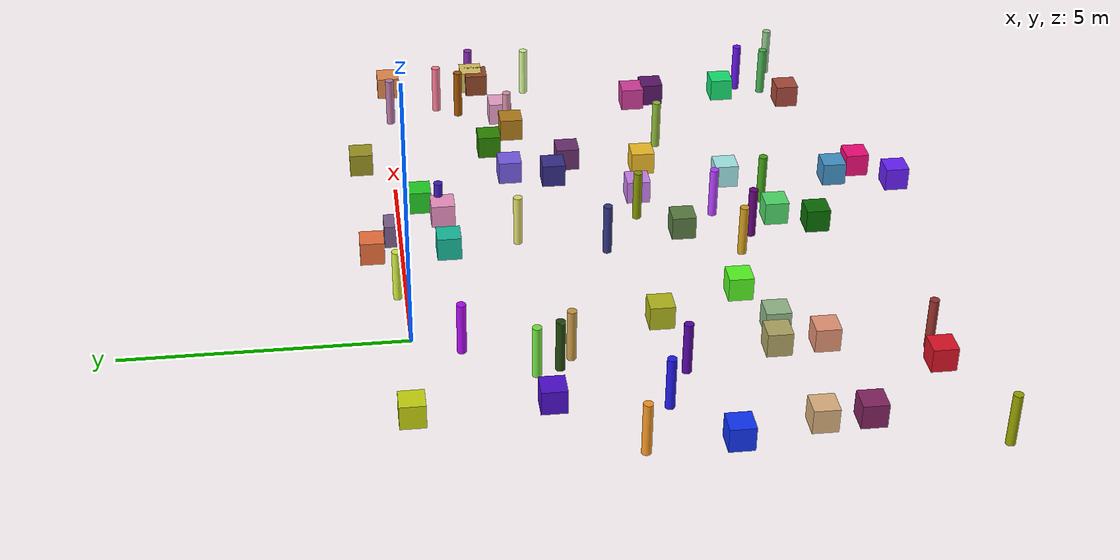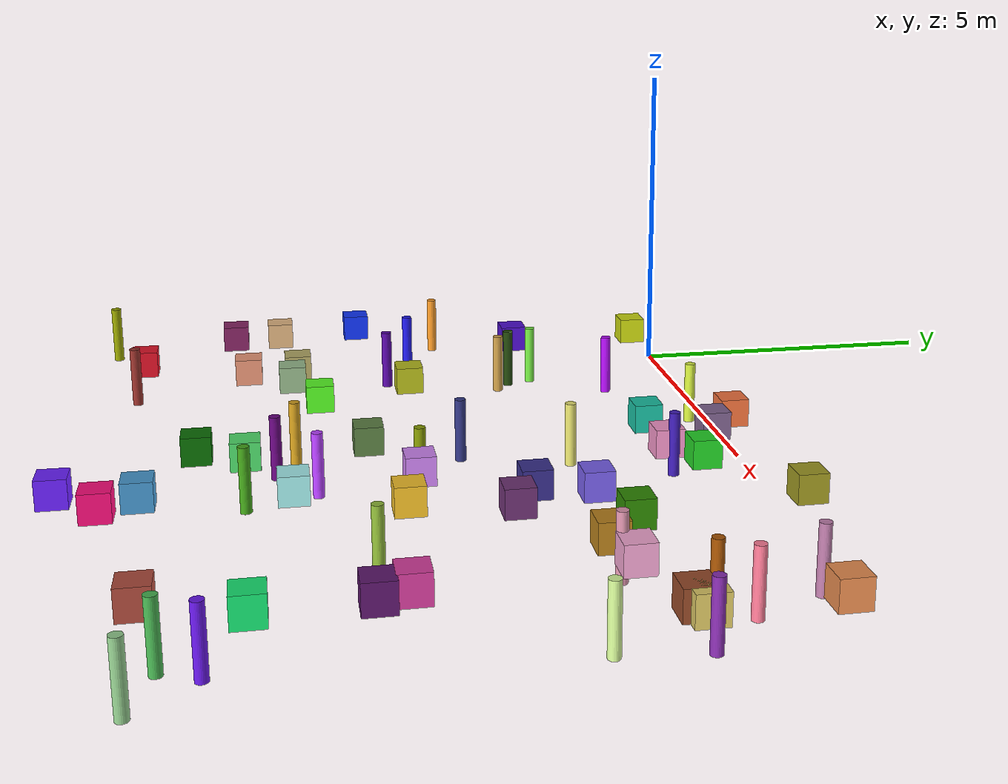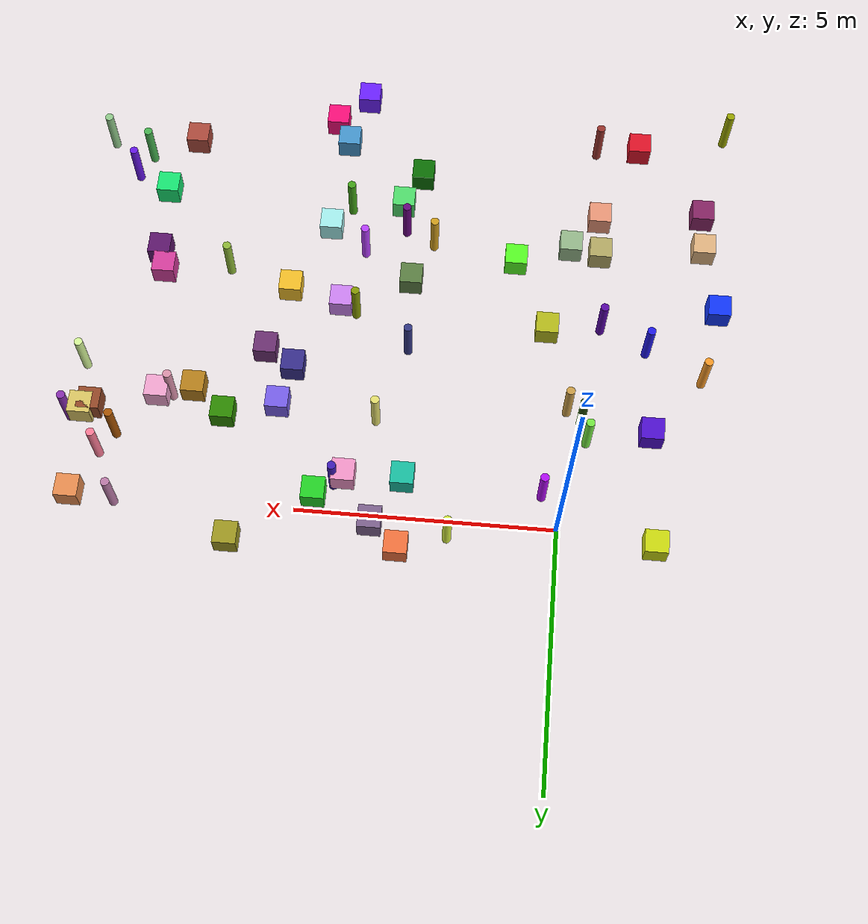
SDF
<sdf version="1.7">
 <world name="warehouse">
  <model name="ground_plane">
   <static>true</static>
   <link name="link">
    <collision name="collision">
     <geometry><plane><normal>0.0 0.0 1</normal><size>1 1</size></plane></geometry>
    </collision>
   </link>
  </model>
  <model name="unit_box_0">
   <static>true</static>
   <pose>3.54 0.08 0 0 0 0</pose>
   <link name="link">
    <collision name="collision">
     <geometry><box><size>0.450000 0.450000 0.450000</size></box></geometry>
    </collision>
    <visual name="visual">
     <geometry><box><size>0.450000 0.450000 0.450000</size></box></geometry>
     <material>
      <ambient>0.49221642949295763 0.3819438212654387 0.5555495247401226 1</ambient>
      <diffuse>0.49221642949295763 0.3819438212654387 0.5555495247401226 1</diffuse>
      <script><uri>file://media/materials/scripts/gazebo.material</uri><name>Gazebo/RandomColor0</name></script>
     </material>
    </visual>
   </link>
  </model>
  <model name="unit_cylinder_1">
   <static>true</static>
   <pose>3.65 -2.23 0 0 0 0</pose>
   <link name="link">
    <collision name="collision">
     <geometry><cylinder><radius>0.085000</radius><length>1.000000</length></cylinder></geometry>
    </collision>
    <visual name="visual">
     <geometry><cylinder><radius>0.085000</radius><length>1.000000</length></cylinder></geometry>
     <material>
      <ambient>0.8941086389998453 0.8734883737843444 0.4283232279845307 1</ambient>
      <diffuse>0.8941086389998453 0.8734883737843444 0.4283232279845307 1</diffuse>
      <script><uri>file://media/materials/scripts/gazebo.material</uri><name>Gazebo/RandomColor1</name></script>
     </material>
    </visual>
   </link>
  </model>
  <model name="unit_box_2">
   <static>true</static>
   <pose>4.67 -0.42 0 0 0 0</pose>
   <link name="link">
    <collision name="collision">
     <geometry><box><size>0.450000 0.450000 0.450000</size></box></geometry>
    </collision>
    <visual name="visual">
     <geometry><box><size>0.450000 0.450000 0.450000</size></box></geometry>
     <material>
      <ambient>0.14121589085153485 0.8244892088663838 0.14899712349563088 1</ambient>
      <diffuse>0.14121589085153485 0.8244892088663838 0.14899712349563088 1</diffuse>
      <script><uri>file://media/materials/scripts/gazebo.material</uri><name>Gazebo/RandomColor2</name></script>
     </material>
    </visual>
   </link>
  </model>
  <model name="unit_cylinder_3">
   <static>true</static>
   <pose>-0.12 -2.75 0 0 0 0</pose>
   <link name="link">
    <collision name="collision">
     <geometry><cylinder><radius>0.085000</radius><length>1.000000</length></cylinder></geometry>
    </collision>
    <visual name="visual">
     <geometry><cylinder><radius>0.085000</radius><length>1.000000</length></cylinder></geometry>
     <material>
      <ambient>0.7898262252167743 0.6124958252999348 0.2808378183170157 1</ambient>
      <diffuse>0.7898262252167743 0.6124958252999348 0.2808378183170157 1</diffuse>
      <script><uri>file://media/materials/scripts/gazebo.material</uri><name>Gazebo/RandomColor3</name></script>
     </material>
    </visual>
   </link>
  </model>
  <model name="unit_box_4">
   <static>true</static>
   <pose>-2.74 -6.52 0 0 0 0</pose>
   <link name="link">
    <collision name="collision">
     <geometry><box><size>0.450000 0.450000 0.450000</size></box></geometry>
    </collision>
    <visual name="visual">
     <geometry><box><size>0.450000 0.450000 0.450000</size></box></geometry>
     <material>
      <ambient>0.8758270074759532 0.7026170182139044 0.4998424159085938 1</ambient>
      <diffuse>0.8758270074759532 0.7026170182139044 0.4998424159085938 1</diffuse>
      <script><uri>file://media/materials/scripts/gazebo.material</uri><name>Gazebo/RandomColor4</name></script>
     </material>
    </visual>
   </link>
  </model>
  <model name="unit_cylinder_5">
   <static>true</static>
   <pose>0.29 -0.88 0 0 0 0</pose>
   <link name="link">
    <collision name="collision">
     <geometry><cylinder><radius>0.085000</radius><length>1.000000</length></cylinder></geometry>
    </collision>
    <visual name="visual">
     <geometry><cylinder><radius>0.085000</radius><length>1.000000</length></cylinder></geometry>
     <material>
      <ambient>0.6969958411022015 0.046907660404184814 0.953249913119854 1</ambient>
      <diffuse>0.6969958411022015 0.046907660404184814 0.953249913119854 1</diffuse>
      <script><uri>file://media/materials/scripts/gazebo.material</uri><name>Gazebo/RandomColor5</name></script>
     </material>
    </visual>
   </link>
  </model>
  <model name="unit_cylinder_7">
   <static>true</static>
   <pose>2.06 0.14 0 0 0 0</pose>
   <link name="link">
    <collision name="collision">
     <geometry><cylinder><radius>0.085000</radius><length>1.000000</length></cylinder></geometry>
    </collision>
    <visual name="visual">
     <geometry><cylinder><radius>0.085000</radius><length>1.000000</length></cylinder></geometry>
     <material>
      <ambient>0.83487229274006 0.9308624301170804 0.2489823457315793 1</ambient>
      <diffuse>0.83487229274006 0.9308624301170804 0.2489823457315793 1</diffuse>
      <script><uri>file://media/materials/scripts/gazebo.material</uri><name>Gazebo/RandomColor7</name></script>
     </material>
    </visual>
   </link>
  </model>
  <model name="unit_box_10">
   <static>true</static>
   <pose>-1.76 -2.22 0 0 0 0</pose>
   <link name="link">
    <collision name="collision">
     <geometry><box><size>0.450000 0.450000 0.450000</size></box></geometry>
    </collision>
    <visual name="visual">
     <geometry><box><size>0.450000 0.450000 0.450000</size></box></geometry>
     <material>
      <ambient>0.30819914242388124 0.05641024999295219 0.8069949057750591 1</ambient>
      <diffuse>0.30819914242388124 0.05641024999295219 0.8069949057750591 1</diffuse>
      <script><uri>file://media/materials/scripts/gazebo.material</uri><name>Gazebo/RandomColor10</name></script>
     </material>
    </visual>
   </link>
  </model>
  <model name="unit_cylinder_13">
   <static>true</static>
   <pose>-3.23 -9.56 0 0 0 0</pose>
   <link name="link">
    <collision name="collision">
     <geometry><cylinder><radius>0.085000</radius><length>1.000000</length></cylinder></geometry>
    </collision>
    <visual name="visual">
     <geometry><cylinder><radius>0.085000</radius><length>1.000000</length></cylinder></geometry>
     <material>
      <ambient>0.5966252229411809 0.6408981784114667 0.001576873510488408 1</ambient>
      <diffuse>0.5966252229411809 0.6408981784114667 0.001576873510488408 1</diffuse>
      <script><uri>file://media/materials/scripts/gazebo.material</uri><name>Gazebo/RandomColor13</name></script>
     </material>
    </visual>
   </link>
  </model>
  <model name="unit_box_14">
   <static>true</static>
   <pose>8.28 -5.14 0 0 0 0</pose>
   <link name="link">
    <collision name="collision">
     <geometry><box><size>0.450000 0.450000 0.450000</size></box></geometry>
    </collision>
    <visual name="visual">
     <geometry><box><size>0.450000 0.450000 0.450000</size></box></geometry>
     <material>
      <ambient>0.8344831727208002 0.2399697383260848 0.6123536341076805 1</ambient>
      <diffuse>0.8344831727208002 0.2399697383260848 0.6123536341076805 1</diffuse>
      <script><uri>file://media/materials/scripts/gazebo.material</uri><name>Gazebo/RandomColor14</name></script>
     </material>
    </visual>
   </link>
  </model>
  <model name="unit_box_17">
   <static>true</static>
   <pose>-1.36 -8.92 0 0 0 0</pose>
   <link name="link">
    <collision name="collision">
     <geometry><box><size>0.450000 0.450000 0.450000</size></box></geometry>
    </collision>
    <visual name="visual">
     <geometry><box><size>0.450000 0.450000 0.450000</size></box></geometry>
     <material>
      <ambient>0.8711556283389497 0.07227653963872849 0.15338370299610837 1</ambient>
      <diffuse>0.8711556283389497 0.07227653963872849 0.15338370299610837 1</diffuse>
      <script><uri>file://media/materials/scripts/gazebo.material</uri><name>Gazebo/RandomColor17</name></script>
     </material>
    </visual>
   </link>
  </model>
  <model name="unit_cylinder_17">
   <static>true</static>
   <pose>2.82 -6.39 0 0 0 0</pose>
   <link name="link">
    <collision name="collision">
     <geometry><cylinder><radius>0.085000</radius><length>1.000000</length></cylinder></geometry>
    </collision>
    <visual name="visual">
     <geometry><cylinder><radius>0.085000</radius><length>1.000000</length></cylinder></geometry>
     <material>
      <ambient>0.819102408019355 0.6173032143909429 0.11231297093222081 1</ambient>
      <diffuse>0.819102408019355 0.6173032143909429 0.11231297093222081 1</diffuse>
      <script><uri>file://media/materials/scripts/gazebo.material</uri><name>Gazebo/RandomColor17</name></script>
     </material>
    </visual>
   </link>
  </model>
  <model name="unit_cylinder_18">
   <static>true</static>
   <pose>4.61 -7.14 0 0 0 0</pose>
   <link name="link">
    <collision name="collision">
     <geometry><cylinder><radius>0.085000</radius><length>1.000000</length></cylinder></geometry>
    </collision>
    <visual name="visual">
     <geometry><cylinder><radius>0.085000</radius><length>1.000000</length></cylinder></geometry>
     <material>
      <ambient>0.2592761966020771 0.6384268163339042 0.09613030569205283 1</ambient>
      <diffuse>0.2592761966020771 0.6384268163339042 0.09613030569205283 1</diffuse>
      <script><uri>file://media/materials/scripts/gazebo.material</uri><name>Gazebo/RandomColor18</name></script>
     </material>
    </visual>
   </link>
  </model>
  <model name="unit_box_20">
   <static>true</static>
   <pose>-0.62 -6.25 0 0 0 0</pose>
   <link name="link">
    <collision name="collision">
     <geometry><box><size>0.450000 0.450000 0.450000</size></box></geometry>
    </collision>
    <visual name="visual">
     <geometry><box><size>0.450000 0.450000 0.450000</size></box></geometry>
     <material>
      <ambient>0.6995548471565017 0.6582530707848234 0.3927673776314795 1</ambient>
      <diffuse>0.6995548471565017 0.6582530707848234 0.3927673776314795 1</diffuse>
      <script><uri>file://media/materials/scripts/gazebo.material</uri><name>Gazebo/RandomColor20</name></script>
     </material>
    </visual>
   </link>
  </model>
  <model name="unit_box_21">
   <static>true</static>
   <pose>4.14 -0.84 0 0 0 0</pose>
   <link name="link">
    <collision name="collision">
     <geometry><box><size>0.450000 0.450000 0.450000</size></box></geometry>
    </collision>
    <visual name="visual">
     <geometry><box><size>0.450000 0.450000 0.450000</size></box></geometry>
     <material>
      <ambient>0.94493098200949 0.5805900964786412 0.7797267321622182 1</ambient>
      <diffuse>0.94493098200949 0.5805900964786412 0.7797267321622182 1</diffuse>
      <script><uri>file://media/materials/scripts/gazebo.material</uri><name>Gazebo/RandomColor21</name></script>
     </material>
    </visual>
   </link>
  </model>
  <model name="unit_cylinder_21">
   <static>true</static>
   <pose>-0.5 -9.01 0 0 0 0</pose>
   <link name="link">
    <collision name="collision">
     <geometry><cylinder><radius>0.085000</radius><length>1.000000</length></cylinder></geometry>
    </collision>
    <visual name="visual">
     <geometry><cylinder><radius>0.085000</radius><length>1.000000</length></cylinder></geometry>
     <material>
      <ambient>0.5935503974926962 0.1981231207876929 0.1723133132744028 1</ambient>
      <diffuse>0.5935503974926962 0.1981231207876929 0.1723133132744028 1</diffuse>
      <script><uri>file://media/materials/scripts/gazebo.material</uri><name>Gazebo/RandomColor21</name></script>
     </material>
    </visual>
   </link>
  </model>
  <model name="unit_box_22">
   <static>true</static>
   <pose>3.17 -7.86 0 0 0 0</pose>
   <link name="link">
    <collision name="collision">
     <geometry><box><size>0.450000 0.450000 0.450000</size></box></geometry>
    </collision>
    <visual name="visual">
     <geometry><box><size>0.450000 0.450000 0.450000</size></box></geometry>
     <material>
      <ambient>0.042180342107623 0.4331906733586902 0.01565587071072405 1</ambient>
      <diffuse>0.042180342107623 0.4331906733586902 0.01565587071072405 1</diffuse>
      <script><uri>file://media/materials/scripts/gazebo.material</uri><name>Gazebo/RandomColor22</name></script>
     </material>
    </visual>
   </link>
  </model>
  <model name="unit_cylinder_22">
   <static>true</static>
   <pose>3.42 -6.69 0 0 0 0</pose>
   <link name="link">
    <collision name="collision">
     <geometry><cylinder><radius>0.085000</radius><length>1.000000</length></cylinder></geometry>
    </collision>
    <visual name="visual">
     <geometry><cylinder><radius>0.085000</radius><length>1.000000</length></cylinder></geometry>
     <material>
      <ambient>0.40371749337117635 0.018035788357352645 0.4952989950266149 1</ambient>
      <diffuse>0.40371749337117635 0.018035788357352645 0.4952989950266149 1</diffuse>
      <script><uri>file://media/materials/scripts/gazebo.material</uri><name>Gazebo/RandomColor22</name></script>
     </material>
    </visual>
   </link>
  </model>
  <model name="unit_box_23">
   <static>true</static>
   <pose>5.38 -3.11 0 0 0 0</pose>
   <link name="link">
    <collision name="collision">
     <geometry><box><size>0.450000 0.450000 0.450000</size></box></geometry>
    </collision>
    <visual name="visual">
     <geometry><box><size>0.450000 0.450000 0.450000</size></box></geometry>
     <material>
      <ambient>0.21470545850147904 0.17822945384433364 0.5443195358824162 1</ambient>
      <diffuse>0.21470545850147904 0.17822945384433364 0.5443195358824162 1</diffuse>
      <script><uri>file://media/materials/scripts/gazebo.material</uri><name>Gazebo/RandomColor23</name></script>
     </material>
    </visual>
   </link>
  </model>
  <model name="unit_box_24">
   <static>true</static>
   <pose>1.1 -5.94 0 0 0 0</pose>
   <link name="link">
    <collision name="collision">
     <geometry><box><size>0.450000 0.450000 0.450000</size></box></geometry>
    </collision>
    <visual name="visual">
     <geometry><box><size>0.450000 0.450000 0.450000</size></box></geometry>
     <material>
      <ambient>0.33861427677319433 0.987256980340304 0.13684380857669165 1</ambient>
      <diffuse>0.33861427677319433 0.987256980340304 0.13684380857669165 1</diffuse>
      <script><uri>file://media/materials/scripts/gazebo.material</uri><name>Gazebo/RandomColor24</name></script>
     </material>
    </visual>
   </link>
  </model>
  <model name="unit_box_25">
   <static>true</static>
   <pose>-2.71 -7.34 0 0 0 0</pose>
   <link name="link">
    <collision name="collision">
     <geometry><box><size>0.450000 0.450000 0.450000</size></box></geometry>
    </collision>
    <visual name="visual">
     <geometry><box><size>0.450000 0.450000 0.450000</size></box></geometry>
     <material>
      <ambient>0.5207034857579925 0.14055315646117983 0.38648327738103294 1</ambient>
      <diffuse>0.5207034857579925 0.14055315646117983 0.38648327738103294 1</diffuse>
      <script><uri>file://media/materials/scripts/gazebo.material</uri><name>Gazebo/RandomColor25</name></script>
     </material>
    </visual>
   </link>
  </model>
  <model name="unit_cylinder_26">
   <static>true</static>
   <pose>-0.53 -2.1 0 0 0 0</pose>
   <link name="link">
    <collision name="collision">
     <geometry><cylinder><radius>0.085000</radius><length>1.000000</length></cylinder></geometry>
    </collision>
    <visual name="visual">
     <geometry><cylinder><radius>0.085000</radius><length>1.000000</length></cylinder></geometry>
     <material>
      <ambient>0.45751348043979734 0.9081412027594264 0.25885676404848357 1</ambient>
      <diffuse>0.45751348043979734 0.9081412027594264 0.25885676404848357 1</diffuse>
      <script><uri>file://media/materials/scripts/gazebo.material</uri><name>Gazebo/RandomColor26</name></script>
     </material>
    </visual>
   </link>
  </model>
  <model name="unit_box_27">
   <static>true</static>
   <pose>9.42 -1.83 0 0 0 0</pose>
   <link name="link">
    <collision name="collision">
     <geometry><box><size>0.450000 0.450000 0.450000</size></box></geometry>
    </collision>
    <visual name="visual">
     <geometry><box><size>0.450000 0.450000 0.450000</size></box></geometry>
     <material>
      <ambient>0.8549388781320467 0.772632596173304 0.3870949751089201 1</ambient>
      <diffuse>0.8549388781320467 0.772632596173304 0.3870949751089201 1</diffuse>
      <script><uri>file://media/materials/scripts/gazebo.material</uri><name>Gazebo/RandomColor27</name></script>
     </material>
    </visual>
   </link>
  </model>
  <model name="unit_box_29">
   <static>true</static>
   <pose>4.58 -4.66 0 0 0 0</pose>
   <link name="link">
    <collision name="collision">
     <geometry><box><size>0.450000 0.450000 0.450000</size></box></geometry>
    </collision>
    <visual name="visual">
     <geometry><box><size>0.450000 0.450000 0.450000</size></box></geometry>
     <material>
      <ambient>0.8018099990713892 0.5124061729968933 0.9440981529417061 1</ambient>
      <diffuse>0.8018099990713892 0.5124061729968933 0.9440981529417061 1</diffuse>
      <script><uri>file://media/materials/scripts/gazebo.material</uri><name>Gazebo/RandomColor29</name></script>
     </material>
    </visual>
   </link>
  </model>
  <model name="unit_cylinder_29">
   <static>true</static>
   <pose>-0.72 -4.67 0 0 0 0</pose>
   <link name="link">
    <collision name="collision">
     <geometry><cylinder><radius>0.085000</radius><length>1.000000</length></cylinder></geometry>
    </collision>
    <visual name="visual">
     <geometry><cylinder><radius>0.085000</radius><length>1.000000</length></cylinder></geometry>
     <material>
      <ambient>0.34257523316524774 0.02786796494638355 0.6460344827369737 1</ambient>
      <diffuse>0.34257523316524774 0.02786796494638355 0.6460344827369737 1</diffuse>
      <script><uri>file://media/materials/scripts/gazebo.material</uri><name>Gazebo/RandomColor29</name></script>
     </material>
    </visual>
   </link>
  </model>
  <model name="unit_box_30">
   <static>true</static>
   <pose>0.39 -4.39 0 0 0 0</pose>
   <link name="link">
    <collision name="collision">
     <geometry><box><size>0.450000 0.450000 0.450000</size></box></geometry>
    </collision>
    <visual name="visual">
     <geometry><box><size>0.450000 0.450000 0.450000</size></box></geometry>
     <material>
      <ambient>0.7091340711998175 0.7280748775627042 0.10776558272895032 1</ambient>
      <diffuse>0.7091340711998175 0.7280748775627042 0.10776558272895032 1</diffuse>
      <script><uri>file://media/materials/scripts/gazebo.material</uri><name>Gazebo/RandomColor30</name></script>
     </material>
    </visual>
   </link>
  </model>
  <model name="unit_cylinder_30">
   <static>true</static>
   <pose>9.92 -8.4 0 0 0 0</pose>
   <link name="link">
    <collision name="collision">
     <geometry><cylinder><radius>0.085000</radius><length>1.000000</length></cylinder></geometry>
    </collision>
    <visual name="visual">
     <geometry><cylinder><radius>0.085000</radius><length>1.000000</length></cylinder></geometry>
     <material>
      <ambient>0.5676749720550303 0.7900431715429157 0.5467973582122708 1</ambient>
      <diffuse>0.5676749720550303 0.7900431715429157 0.5467973582122708 1</diffuse>
      <script><uri>file://media/materials/scripts/gazebo.material</uri><name>Gazebo/RandomColor30</name></script>
     </material>
    </visual>
   </link>
  </model>
  <model name="unit_cylinder_31">
   <static>true</static>
   <pose>-0.4 -2.52 0 0 0 0</pose>
   <link name="link">
    <collision name="collision">
     <geometry><cylinder><radius>0.085000</radius><length>1.000000</length></cylinder></geometry>
    </collision>
    <visual name="visual">
     <geometry><cylinder><radius>0.085000</radius><length>1.000000</length></cylinder></geometry>
     <material>
      <ambient>0.1378401603123508 0.2811154838465755 0.04632495795090075 1</ambient>
      <diffuse>0.1378401603123508 0.2811154838465755 0.04632495795090075 1</diffuse>
      <script><uri>file://media/materials/scripts/gazebo.material</uri><name>Gazebo/RandomColor31</name></script>
     </material>
    </visual>
   </link>
  </model>
  <model name="unit_cylinder_33">
   <static>true</static>
   <pose>9.6 -2.99 0 0 0 0</pose>
   <link name="link">
    <collision name="collision">
     <geometry><cylinder><radius>0.085000</radius><length>1.000000</length></cylinder></geometry>
    </collision>
    <visual name="visual">
     <geometry><cylinder><radius>0.085000</radius><length>1.000000</length></cylinder></geometry>
     <material>
      <ambient>0.8401252311438854 0.9714280196622415 0.6006072341289345 1</ambient>
      <diffuse>0.8401252311438854 0.9714280196622415 0.6006072341289345 1</diffuse>
      <script><uri>file://media/materials/scripts/gazebo.material</uri><name>Gazebo/RandomColor33</name></script>
     </material>
    </visual>
   </link>
  </model>
  <model name="unit_box_35">
   <static>true</static>
   <pose>9.26 -1.93 0 0 0 0</pose>
   <link name="link">
    <collision name="collision">
     <geometry><box><size>0.450000 0.450000 0.450000</size></box></geometry>
    </collision>
    <visual name="visual">
     <geometry><box><size>0.450000 0.450000 0.450000</size></box></geometry>
     <material>
      <ambient>0.5807998042772612 0.28567584823917247 0.1548747703201624 1</ambient>
      <diffuse>0.5807998042772612 0.28567584823917247 0.1548747703201624 1</diffuse>
      <script><uri>file://media/materials/scripts/gazebo.material</uri><name>Gazebo/RandomColor35</name></script>
     </material>
    </visual>
   </link>
  </model>
  <model name="unit_box_38">
   <static>true</static>
   <pose>6.21 0.63 0 0 0 0</pose>
   <link name="link">
    <collision name="collision">
     <geometry><box><size>0.450000 0.450000 0.450000</size></box></geometry>
    </collision>
    <visual name="visual">
     <geometry><box><size>0.450000 0.450000 0.450000</size></box></geometry>
     <material>
      <ambient>0.6197037226402071 0.5928473878238132 0.13075664195808911 1</ambient>
      <diffuse>0.6197037226402071 0.5928473878238132 0.13075664195808911 1</diffuse>
      <script><uri>file://media/materials/scripts/gazebo.material</uri><name>Gazebo/RandomColor38</name></script>
     </material>
    </visual>
   </link>
  </model>
  <model name="unit_cylinder_40">
   <static>true</static>
   <pose>8.56 -0.07 0 0 0 0</pose>
   <link name="link">
    <collision name="collision">
     <geometry><cylinder><radius>0.085000</radius><length>1.000000</length></cylinder></geometry>
    </collision>
    <visual name="visual">
     <geometry><cylinder><radius>0.085000</radius><length>1.000000</length></cylinder></geometry>
     <material>
      <ambient>0.7381407396719185 0.48273601888720896 0.6617981998154492 1</ambient>
      <diffuse>0.7381407396719185 0.48273601888720896 0.6617981998154492 1</diffuse>
      <script><uri>file://media/materials/scripts/gazebo.material</uri><name>Gazebo/RandomColor40</name></script>
     </material>
    </visual>
   </link>
  </model>
  <model name="unit_cylinder_42">
   <static>true</static>
   <pose>9.04 -8.11 0 0 0 0</pose>
   <link name="link">
    <collision name="collision">
     <geometry><cylinder><radius>0.085000</radius><length>1.000000</length></cylinder></geometry>
    </collision>
    <visual name="visual">
     <geometry><cylinder><radius>0.085000</radius><length>1.000000</length></cylinder></geometry>
     <material>
      <ambient>0.2778602384432839 0.6997360757796796 0.317835442069633 1</ambient>
      <diffuse>0.2778602384432839 0.6997360757796796 0.317835442069633 1</diffuse>
      <script><uri>file://media/materials/scripts/gazebo.material</uri><name>Gazebo/RandomColor42</name></script>
     </material>
    </visual>
   </link>
  </model>
  <model name="unit_box_43">
   <static>true</static>
   <pose>3.21 -5.3 0 0 0 0</pose>
   <link name="link">
    <collision name="collision">
     <geometry><box><size>0.450000 0.450000 0.450000</size></box></geometry>
    </collision>
    <visual name="visual">
     <geometry><box><size>0.450000 0.450000 0.450000</size></box></geometry>
     <material>
      <ambient>0.35556406772528026 0.49515413163401667 0.26304053777526615 1</ambient>
      <diffuse>0.35556406772528026 0.49515413163401667 0.26304053777526615 1</diffuse>
      <script><uri>file://media/materials/scripts/gazebo.material</uri><name>Gazebo/RandomColor43</name></script>
     </material>
    </visual>
   </link>
  </model>
  <model name="unit_cylinder_43">
   <static>true</static>
   <pose>9.73 -1.81 0 0 0 0</pose>
   <link name="link">
    <collision name="collision">
     <geometry><cylinder><radius>0.085000</radius><length>1.000000</length></cylinder></geometry>
    </collision>
    <visual name="visual">
     <geometry><cylinder><radius>0.085000</radius><length>1.000000</length></cylinder></geometry>
     <material>
      <ambient>0.5330345270217969 0.17874874635635107 0.6889806526046305 1</ambient>
      <diffuse>0.5330345270217969 0.17874874635635107 0.6889806526046305 1</diffuse>
      <script><uri>file://media/materials/scripts/gazebo.material</uri><name>Gazebo/RandomColor43</name></script>
     </material>
    </visual>
   </link>
  </model>
  <model name="unit_cylinder_44">
   <static>true</static>
   <pose>7.75 -2.44 0 0 0 0</pose>
   <link name="link">
    <collision name="collision">
     <geometry><cylinder><radius>0.085000</radius><length>1.000000</length></cylinder></geometry>
    </collision>
    <visual name="visual">
     <geometry><cylinder><radius>0.085000</radius><length>1.000000</length></cylinder></geometry>
     <material>
      <ambient>0.8595033613020812 0.5727552163128401 0.670732621470958 1</ambient>
      <diffuse>0.8595033613020812 0.5727552163128401 0.670732621470958 1</diffuse>
      <script><uri>file://media/materials/scripts/gazebo.material</uri><name>Gazebo/RandomColor44</name></script>
     </material>
    </visual>
   </link>
  </model>
  <model name="unit_box_46">
   <static>true</static>
   <pose>5.97 -3.46 0 0 0 0</pose>
   <link name="link">
    <collision name="collision">
     <geometry><box><size>0.450000 0.450000 0.450000</size></box></geometry>
    </collision>
    <visual name="visual">
     <geometry><box><size>0.450000 0.450000 0.450000</size></box></geometry>
     <material>
      <ambient>0.4198220119686834 0.18921634421361333 0.4438748553725962 1</ambient>
      <diffuse>0.4198220119686834 0.18921634421361333 0.4438748553725962 1</diffuse>
      <script><uri>file://media/materials/scripts/gazebo.material</uri><name>Gazebo/RandomColor46</name></script>
     </material>
    </visual>
   </link>
  </model>
  <model name="unit_box_50">
   <static>true</static>
   <pose>8.48 -7.08 0 0 0 0</pose>
   <link name="link">
    <collision name="collision">
     <geometry><box><size>0.450000 0.450000 0.450000</size></box></geometry>
    </collision>
    <visual name="visual">
     <geometry><box><size>0.450000 0.450000 0.450000</size></box></geometry>
     <material>
      <ambient>0.08576243444474563 0.8970589568452585 0.4471621068403837 1</ambient>
      <diffuse>0.08576243444474563 0.8970589568452585 0.4471621068403837 1</diffuse>
      <script><uri>file://media/materials/scripts/gazebo.material</uri><name>Gazebo/RandomColor50</name></script>
     </material>
    </visual>
   </link>
  </model>
  <model name="unit_box_61">
   <static>true</static>
   <pose>-1.88 0.11 0 0 0 0</pose>
   <link name="link">
    <collision name="collision">
     <geometry><box><size>0.450000 0.450000 0.450000</size></box></geometry>
    </collision>
    <visual name="visual">
     <geometry><box><size>0.450000 0.450000 0.450000</size></box></geometry>
     <material>
      <ambient>0.7948081125724217 0.8475850876693933 0.0635339973613982 1</ambient>
      <diffuse>0.7948081125724217 0.8475850876693933 0.0635339973613982 1</diffuse>
      <script><uri>file://media/materials/scripts/gazebo.material</uri><name>Gazebo/RandomColor61</name></script>
     </material>
    </visual>
   </link>
  </model>
  <model name="unit_cylinder_61">
   <static>true</static>
   <pose>4.28 -4.62 0 0 0 0</pose>
   <link name="link">
    <collision name="collision">
     <geometry><cylinder><radius>0.085000</radius><length>1.000000</length></cylinder></geometry>
    </collision>
    <visual name="visual">
     <geometry><cylinder><radius>0.085000</radius><length>1.000000</length></cylinder></geometry>
     <material>
      <ambient>0.5223295666346649 0.5971365796568101 0.013179151926589583 1</ambient>
      <diffuse>0.5223295666346649 0.5971365796568101 0.013179151926589583 1</diffuse>
      <script><uri>file://media/materials/scripts/gazebo.material</uri><name>Gazebo/RandomColor61</name></script>
     </material>
    </visual>
   </link>
  </model>
  <model name="unit_cylinder_63">
   <static>true</static>
   <pose>9.02 -1.07 0 0 0 0</pose>
   <link name="link">
    <collision name="collision">
     <geometry><cylinder><radius>0.085000</radius><length>1.000000</length></cylinder></geometry>
    </collision>
    <visual name="visual">
     <geometry><cylinder><radius>0.085000</radius><length>1.000000</length></cylinder></geometry>
     <material>
      <ambient>0.9869686644054969 0.484125805339512 0.5898018994466344 1</ambient>
      <diffuse>0.9869686644054969 0.484125805339512 0.5898018994466344 1</diffuse>
      <script><uri>file://media/materials/scripts/gazebo.material</uri><name>Gazebo/RandomColor63</name></script>
     </material>
    </visual>
   </link>
  </model>
  <model name="unit_box_64">
   <static>true</static>
   <pose>7.28 -2.47 0 0 0 0</pose>
   <link name="link">
    <collision name="collision">
     <geometry><box><size>0.450000 0.450000 0.450000</size></box></geometry>
    </collision>
    <visual name="visual">
     <geometry><box><size>0.450000 0.450000 0.450000</size></box></geometry>
     <material>
      <ambient>0.7154684454911928 0.49937214958010523 0.107186774141809 1</ambient>
      <diffuse>0.7154684454911928 0.49937214958010523 0.107186774141809 1</diffuse>
      <script><uri>file://media/materials/scripts/gazebo.material</uri><name>Gazebo/RandomColor64</name></script>
     </material>
    </visual>
   </link>
  </model>
  <model name="unit_cylinder_64">
   <static>true</static>
   <pose>8.75 -1.51 0 0 0 0</pose>
   <link name="link">
    <collision name="collision">
     <geometry><cylinder><radius>0.085000</radius><length>1.000000</length></cylinder></geometry>
    </collision>
    <visual name="visual">
     <geometry><cylinder><radius>0.085000</radius><length>1.000000</length></cylinder></geometry>
     <material>
      <ambient>0.6589196808363399 0.33185845375331624 0.01719510944290603 1</ambient>
      <diffuse>0.6589196808363399 0.33185845375331624 0.01719510944290603 1</diffuse>
      <script><uri>file://media/materials/scripts/gazebo.material</uri><name>Gazebo/RandomColor64</name></script>
     </material>
    </visual>
   </link>
  </model>
  <model name="unit_box_65">
   <static>true</static>
   <pose>8.43 -5.57 0 0 0 0</pose>
   <link name="link">
    <collision name="collision">
     <geometry><box><size>0.450000 0.450000 0.450000</size></box></geometry>
    </collision>
    <visual name="visual">
     <geometry><box><size>0.450000 0.450000 0.450000</size></box></geometry>
     <material>
      <ambient>0.3612877419148599 0.08575593634796952 0.4211384162780678 1</ambient>
      <diffuse>0.3612877419148599 0.08575593634796952 0.4211384162780678 1</diffuse>
      <script><uri>file://media/materials/scripts/gazebo.material</uri><name>Gazebo/RandomColor65</name></script>
     </material>
    </visual>
   </link>
  </model>
  <model name="unit_cylinder_65">
   <static>true</static>
   <pose>4.34 -0.78 0 0 0 0</pose>
   <link name="link">
    <collision name="collision">
     <geometry><cylinder><radius>0.085000</radius><length>1.000000</length></cylinder></geometry>
    </collision>
    <visual name="visual">
     <geometry><cylinder><radius>0.085000</radius><length>1.000000</length></cylinder></geometry>
     <material>
      <ambient>0.24648017954038182 0.11035382019208939 0.7126437121732525 1</ambient>
      <diffuse>0.24648017954038182 0.11035382019208939 0.7126437121732525 1</diffuse>
      <script><uri>file://media/materials/scripts/gazebo.material</uri><name>Gazebo/RandomColor65</name></script>
     </material>
    </visual>
   </link>
  </model>
  <model name="unit_box_66">
   <static>true</static>
   <pose>4.97 -6.47 0 0 0 0</pose>
   <link name="link">
    <collision name="collision">
     <geometry><box><size>0.450000 0.450000 0.450000</size></box></geometry>
    </collision>
    <visual name="visual">
     <geometry><box><size>0.450000 0.450000 0.450000</size></box></geometry>
     <material>
      <ambient>0.6428349444989845 0.9311488598034106 0.9277968590896998 1</ambient>
      <diffuse>0.6428349444989845 0.9311488598034106 0.9277968590896998 1</diffuse>
      <script><uri>file://media/materials/scripts/gazebo.material</uri><name>Gazebo/RandomColor66</name></script>
     </material>
    </visual>
   </link>
  </model>
  <model name="unit_box_69">
   <static>true</static>
   <pose>-0.01 -6.36 0 0 0 0</pose>
   <link name="link">
    <collision name="collision">
     <geometry><box><size>0.450000 0.450000 0.450000</size></box></geometry>
    </collision>
    <visual name="visual">
     <geometry><box><size>0.450000 0.450000 0.450000</size></box></geometry>
     <material>
      <ambient>0.583805914584737 0.7206462531668778 0.5416785089257101 1</ambient>
      <diffuse>0.583805914584737 0.7206462531668778 0.5416785089257101 1</diffuse>
      <script><uri>file://media/materials/scripts/gazebo.material</uri><name>Gazebo/RandomColor69</name></script>
     </material>
    </visual>
   </link>
  </model>
  <model name="unit_box_70">
   <static>true</static>
   <pose>7.98 -2.31 0 0 0 0</pose>
   <link name="link">
    <collision name="collision">
     <geometry><box><size>0.450000 0.450000 0.450000</size></box></geometry>
    </collision>
    <visual name="visual">
     <geometry><box><size>0.450000 0.450000 0.450000</size></box></geometry>
     <material>
      <ambient>0.9391672199765372 0.6425018751109179 0.8098879915831885 1</ambient>
      <diffuse>0.9391672199765372 0.6425018751109179 0.8098879915831885 1</diffuse>
      <script><uri>file://media/materials/scripts/gazebo.material</uri><name>Gazebo/RandomColor70</name></script>
     </material>
    </visual>
   </link>
  </model>
  <model name="unit_cylinder_72">
   <static>true</static>
   <pose>9.26 -7.6 0 0 0 0</pose>
   <link name="link">
    <collision name="collision">
     <geometry><cylinder><radius>0.085000</radius><length>1.000000</length></cylinder></geometry>
    </collision>
    <visual name="visual">
     <geometry><cylinder><radius>0.085000</radius><length>1.000000</length></cylinder></geometry>
     <material>
      <ambient>0.4017165844295091 0.08855224520854144 0.9031492423177592 1</ambient>
      <diffuse>0.4017165844295091 0.08855224520854144 0.9031492423177592 1</diffuse>
      <script><uri>file://media/materials/scripts/gazebo.material</uri><name>Gazebo/RandomColor72</name></script>
     </material>
    </visual>
   </link>
  </model>
  <model name="unit_box_73">
   <static>true</static>
   <pose>5.1 -9.12 0 0 0 0</pose>
   <link name="link">
    <collision name="collision">
     <geometry><box><size>0.450000 0.450000 0.450000</size></box></geometry>
    </collision>
    <visual name="visual">
     <geometry><box><size>0.450000 0.450000 0.450000</size></box></geometry>
     <material>
      <ambient>0.970447474448779 0.048265711651139465 0.47521224309965837 1</ambient>
      <diffuse>0.970447474448779 0.048265711651139465 0.47521224309965837 1</diffuse>
      <script><uri>file://media/materials/scripts/gazebo.material</uri><name>Gazebo/RandomColor73</name></script>
     </material>
    </visual>
   </link>
  </model>
  <model name="unit_box_76">
   <static>true</static>
   <pose>5.59 -2.27 0 0 0 0</pose>
   <link name="link">
    <collision name="collision">
     <geometry><box><size>0.450000 0.450000 0.450000</size></box></geometry>
    </collision>
    <visual name="visual">
     <geometry><box><size>0.450000 0.450000 0.450000</size></box></geometry>
     <material>
      <ambient>0.46494777996859615 0.36895844047819537 0.9129689764564299 1</ambient>
      <diffuse>0.46494777996859615 0.36895844047819537 0.9129689764564299 1</diffuse>
      <script><uri>file://media/materials/scripts/gazebo.material</uri><name>Gazebo/RandomColor76</name></script>
     </material>
    </visual>
   </link>
  </model>
  <model name="unit_cylinder_76">
   <static>true</static>
   <pose>-1.66 -4.21 0 0 0 0</pose>
   <link name="link">
    <collision name="collision">
     <geometry><cylinder><radius>0.085000</radius><length>1.000000</length></cylinder></geometry>
    </collision>
    <visual name="visual">
     <geometry><cylinder><radius>0.085000</radius><length>1.000000</length></cylinder></geometry>
     <material>
      <ambient>0.12960142871388658 0.10186796305646306 0.914318231675427 1</ambient>
      <diffuse>0.12960142871388658 0.10186796305646306 0.914318231675427 1</diffuse>
      <script><uri>file://media/materials/scripts/gazebo.material</uri><name>Gazebo/RandomColor76</name></script>
     </material>
    </visual>
   </link>
  </model>
  <model name="unit_box_78">
   <static>true</static>
   <pose>9.35 -0.06 0 0 0 0</pose>
   <link name="link">
    <collision name="collision">
     <geometry><box><size>0.450000 0.450000 0.450000</size></box></geometry>
    </collision>
    <visual name="visual">
     <geometry><box><size>0.450000 0.450000 0.450000</size></box></geometry>
     <material>
      <ambient>0.9067769084049592 0.5496441752610542 0.3088619562480548 1</ambient>
      <diffuse>0.9067769084049592 0.5496441752610542 0.3088619562480548 1</diffuse>
      <script><uri>file://media/materials/scripts/gazebo.material</uri><name>Gazebo/RandomColor78</name></script>
     </material>
    </visual>
   </link>
  </model>
  <model name="unit_box_79">
   <static>true</static>
   <pose>-3.05 -5.08 0 0 0 0</pose>
   <link name="link">
    <collision name="collision">
     <geometry><box><size>0.450000 0.450000 0.450000</size></box></geometry>
    </collision>
    <visual name="visual">
     <geometry><box><size>0.450000 0.450000 0.450000</size></box></geometry>
     <material>
      <ambient>0.06309414677130665 0.20776595224396432 0.9714909449487693 1</ambient>
      <diffuse>0.06309414677130665 0.20776595224396432 0.9714909449487693 1</diffuse>
      <script><uri>file://media/materials/scripts/gazebo.material</uri><name>Gazebo/RandomColor79</name></script>
     </material>
    </visual>
   </link>
  </model>
  <model name="unit_cylinder_82">
   <static>true</static>
   <pose>3.15 -3.87 0 0 0 0</pose>
   <link name="link">
    <collision name="collision">
     <geometry><cylinder><radius>0.085000</radius><length>1.000000</length></cylinder></geometry>
    </collision>
    <visual name="visual">
     <geometry><cylinder><radius>0.085000</radius><length>1.000000</length></cylinder></geometry>
     <material>
      <ambient>0.1947046490151414 0.2116557520910496 0.5112855235408945 1</ambient>
      <diffuse>0.1947046490151414 0.2116557520910496 0.5112855235408945 1</diffuse>
      <script><uri>file://media/materials/scripts/gazebo.material</uri><name>Gazebo/RandomColor82</name></script>
     </material>
    </visual>
   </link>
  </model>
  <model name="unit_box_84">
   <static>true</static>
   <pose>4.49 -9.76 0 0 0 0</pose>
   <link name="link">
    <collision name="collision">
     <geometry><box><size>0.450000 0.450000 0.450000</size></box></geometry>
    </collision>
    <visual name="visual">
     <geometry><box><size>0.450000 0.450000 0.450000</size></box></geometry>
     <material>
      <ambient>0.4181392893164879 0.12623673896940624 0.9945275552209779 1</ambient>
      <diffuse>0.4181392893164879 0.12623673896940624 0.9945275552209779 1</diffuse>
      <script><uri>file://media/materials/scripts/gazebo.material</uri><name>Gazebo/RandomColor84</name></script>
     </material>
    </visual>
   </link>
  </model>
  <model name="unit_cylinder_84">
   <static>true</static>
   <pose>4.23 -6.1 0 0 0 0</pose>
   <link name="link">
    <collision name="collision">
     <geometry><cylinder><radius>0.085000</radius><length>1.000000</length></cylinder></geometry>
    </collision>
    <visual name="visual">
     <geometry><cylinder><radius>0.085000</radius><length>1.000000</length></cylinder></geometry>
     <material>
      <ambient>0.7164551374862793 0.25380657799378137 0.9960701519674263 1</ambient>
      <diffuse>0.7164551374862793 0.25380657799378137 0.9960701519674263 1</diffuse>
      <script><uri>file://media/materials/scripts/gazebo.material</uri><name>Gazebo/RandomColor84</name></script>
     </material>
    </visual>
   </link>
  </model>
  <model name="unit_box_85">
   <static>true</static>
   <pose>3.0 0.55 0 0 0 0</pose>
   <link name="link">
    <collision name="collision">
     <geometry><box><size>0.450000 0.450000 0.450000</size></box></geometry>
    </collision>
    <visual name="visual">
     <geometry><box><size>0.450000 0.450000 0.450000</size></box></geometry>
     <material>
      <ambient>0.9455874372969189 0.4458023949989499 0.24060196673938627 1</ambient>
      <diffuse>0.9455874372969189 0.4458023949989499 0.24060196673938627 1</diffuse>
      <script><uri>file://media/materials/scripts/gazebo.material</uri><name>Gazebo/RandomColor85</name></script>
     </material>
    </visual>
   </link>
  </model>
  <model name="unit_box_86">
   <static>true</static>
   <pose>3.52 -7.14 0 0 0 0</pose>
   <link name="link">
    <collision name="collision">
     <geometry><box><size>0.450000 0.450000 0.450000</size></box></geometry>
    </collision>
    <visual name="visual">
     <geometry><box><size>0.450000 0.450000 0.450000</size></box></geometry>
     <material>
      <ambient>0.31239903877946884 0.8639080610117191 0.41879260238345906 1</ambient>
      <diffuse>0.31239903877946884 0.8639080610117191 0.41879260238345906 1</diffuse>
      <script><uri>file://media/materials/scripts/gazebo.material</uri><name>Gazebo/RandomColor86</name></script>
     </material>
    </visual>
   </link>
  </model>
  <model name="unit_box_88">
   <static>true</static>
   <pose>5.64 -4.92 0 0 0 0</pose>
   <link name="link">
    <collision name="collision">
     <geometry><box><size>0.450000 0.450000 0.450000</size></box></geometry>
    </collision>
    <visual name="visual">
     <geometry><box><size>0.450000 0.450000 0.450000</size></box></geometry>
     <material>
      <ambient>0.9492588701586115 0.7469503716397756 0.15625674543561152 1</ambient>
      <diffuse>0.9492588701586115 0.7469503716397756 0.15625674543561152 1</diffuse>
      <script><uri>file://media/materials/scripts/gazebo.material</uri><name>Gazebo/RandomColor88</name></script>
     </material>
    </visual>
   </link>
  </model>
  <model name="unit_box_89">
   <static>true</static>
   <pose>3.0 -0.87 0 0 0 0</pose>
   <link name="link">
    <collision name="collision">
     <geometry><box><size>0.450000 0.450000 0.450000</size></box></geometry>
    </collision>
    <visual name="visual">
     <geometry><box><size>0.450000 0.450000 0.450000</size></box></geometry>
     <material>
      <ambient>0.09313716496547664 0.743394003317236 0.6297491127959345 1</ambient>
      <diffuse>0.09313716496547664 0.743394003317236 0.6297491127959345 1</diffuse>
      <script><uri>file://media/materials/scripts/gazebo.material</uri><name>Gazebo/RandomColor89</name></script>
     </material>
    </visual>
   </link>
  </model>
  <model name="unit_cylinder_89">
   <static>true</static>
   <pose>-2.79 -3.62 0 0 0 0</pose>
   <link name="link">
    <collision name="collision">
     <geometry><cylinder><radius>0.085000</radius><length>1.000000</length></cylinder></geometry>
    </collision>
    <visual name="visual">
     <geometry><cylinder><radius>0.085000</radius><length>1.000000</length></cylinder></geometry>
     <material>
      <ambient>0.968601644143089 0.5992820377034571 0.151507683584726 1</ambient>
      <diffuse>0.968601644143089 0.5992820377034571 0.151507683584726 1</diffuse>
      <script><uri>file://media/materials/scripts/gazebo.material</uri><name>Gazebo/RandomColor89</name></script>
     </material>
    </visual>
   </link>
  </model>
  <model name="unit_box_90">
   <static>true</static>
   <pose>4.81 -8.59 0 0 0 0</pose>
   <link name="link">
    <collision name="collision">
     <geometry><box><size>0.450000 0.450000 0.450000</size></box></geometry>
    </collision>
    <visual name="visual">
     <geometry><box><size>0.450000 0.450000 0.450000</size></box></geometry>
     <material>
      <ambient>0.2693443942253625 0.5864270019889432 0.8025852497482073 1</ambient>
      <diffuse>0.2693443942253625 0.5864270019889432 0.8025852497482073 1</diffuse>
      <script><uri>file://media/materials/scripts/gazebo.material</uri><name>Gazebo/RandomColor90</name></script>
     </material>
    </visual>
   </link>
  </model>
  <model name="unit_box_92">
   <static>true</static>
   <pose>-0.58 -7.1 0 0 0 0</pose>
   <link name="link">
    <collision name="collision">
     <geometry><box><size>0.450000 0.450000 0.450000</size></box></geometry>
    </collision>
    <visual name="visual">
     <geometry><box><size>0.450000 0.450000 0.450000</size></box></geometry>
     <material>
      <ambient>0.913673724630969 0.5871451293322473 0.46435442696606877 1</ambient>
      <diffuse>0.913673724630969 0.5871451293322473 0.46435442696606877 1</diffuse>
      <script><uri>file://media/materials/scripts/gazebo.material</uri><name>Gazebo/RandomColor92</name></script>
     </material>
    </visual>
   </link>
  </model>
  <model name="unit_cylinder_92">
   <static>true</static>
   <pose>6.99 -5.45 0 0 0 0</pose>
   <link name="link">
    <collision name="collision">
     <geometry><cylinder><radius>0.085000</radius><length>1.000000</length></cylinder></geometry>
    </collision>
    <visual name="visual">
     <geometry><cylinder><radius>0.085000</radius><length>1.000000</length></cylinder></geometry>
     <material>
      <ambient>0.5586796427550008 0.722765898331635 0.2196494721051241 1</ambient>
      <diffuse>0.5586796427550008 0.722765898331635 0.2196494721051241 1</diffuse>
      <script><uri>file://media/materials/scripts/gazebo.material</uri><name>Gazebo/RandomColor92</name></script>
     </material>
    </visual>
   </link>
  </model>
  <model name="unit_box_94">
   <static>true</static>
   <pose>6.63 -1.96 0 0 0 0</pose>
   <link name="link">
    <collision name="collision">
     <geometry><box><size>0.450000 0.450000 0.450000</size></box></geometry>
    </collision>
    <visual name="visual">
     <geometry><box><size>0.450000 0.450000 0.450000</size></box></geometry>
     <material>
      <ambient>0.17709783486212116 0.531366535369308 0.00458934369553321 1</ambient>
      <diffuse>0.17709783486212116 0.531366535369308 0.00458934369553321 1</diffuse>
      <script><uri>file://media/materials/scripts/gazebo.material</uri><name>Gazebo/RandomColor94</name></script>
     </material>
    </visual>
   </link>
  </model>
  <model name="unit_box_99">
   <static>true</static>
   <pose>8.04 -8.39 0 0 0 0</pose>
   <link name="link">
    <collision name="collision">
     <geometry><box><size>0.450000 0.450000 0.450000</size></box></geometry>
    </collision>
    <visual name="visual">
     <geometry><box><size>0.450000 0.450000 0.450000</size></box></geometry>
     <material>
      <ambient>0.6734853746918722 0.2899211829312591 0.23256251063192213 1</ambient>
      <diffuse>0.6734853746918722 0.2899211829312591 0.23256251063192213 1</diffuse>
      <script><uri>file://media/materials/scripts/gazebo.material</uri><name>Gazebo/RandomColor99</name></script>
     </material>
    </visual>
   </link>
  </model>
 </world>
</sdf>
